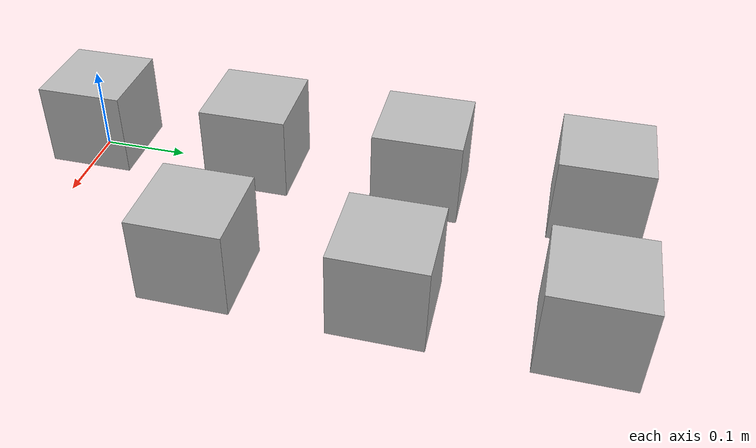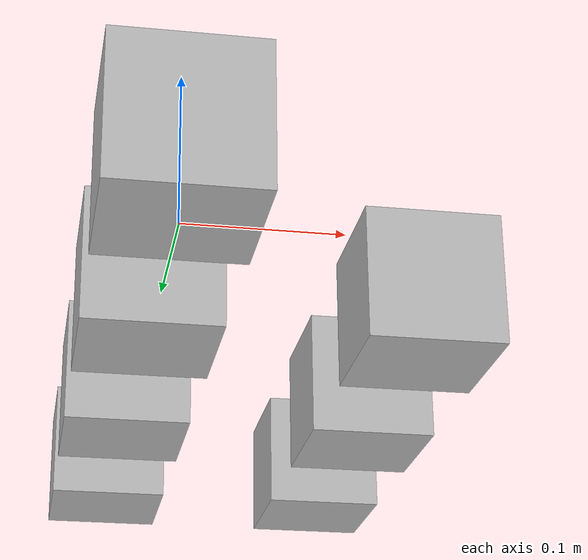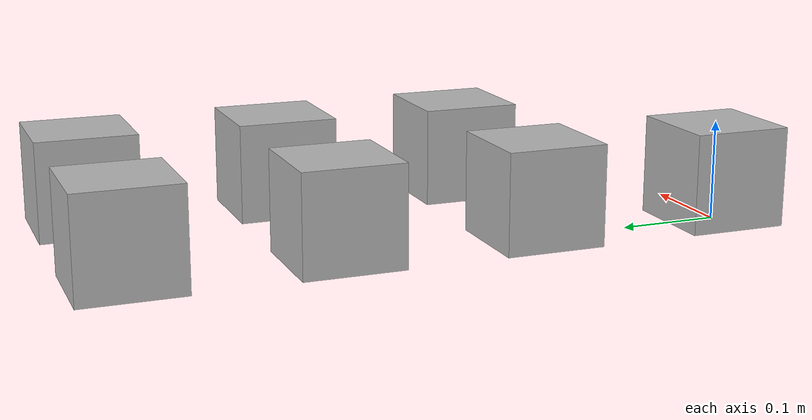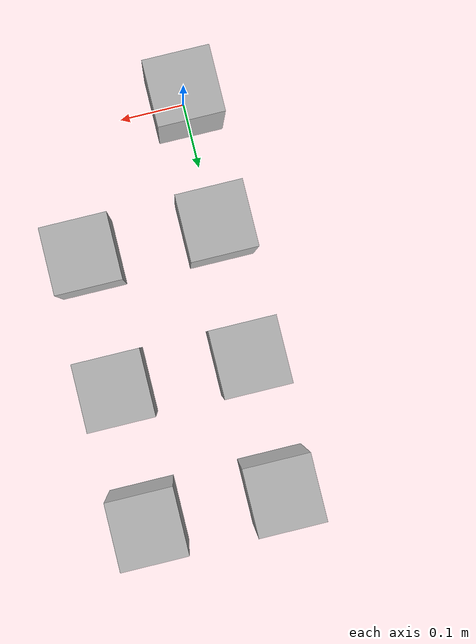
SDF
<?xml version='1.0'?>

<sdf version='1.7'>
  <model name='goods'>
    <static>false</static>

    <link name='no_tag'>
      <pose>0 0 0.05 0 0 0</pose>
      <visual name="visual">
        <geometry>
          <mesh>
            <uri>model://goods/meshes/box.dae</uri>
            <scale>1 1 1</scale>
          </mesh>
        </geometry>
      </visual>
      <collision name="collision">
        <geometry>
          <box>
            <size>0.1 0.1 0.1</size>
          </box>
        </geometry>
      </collision>
      <inertial>
        <mass>0.05</mass>
        <inertia>
          <ixx>0.0001</ixx>
          <iyy>0.0001</iyy>
          <izz>0.0001</izz>
        </inertia>
      </inertial>
    </link>

    <link name='tag36h11-00'>
      <pose relative_to='no_tag'>0 0.6 0 0 0 0</pose>
      <visual name="visual">
        <geometry>
          <mesh>
            <uri>model://goods/meshes/box00.dae</uri>
            <scale>1 1 1</scale>
          </mesh>
        </geometry>
      </visual>
      <collision name="collision">
        <geometry>
          <box>
            <size>0.1 0.1 0.1</size>
          </box>
        </geometry>
      </collision>
      <inertial>
        <mass>0.05</mass>
        <inertia>
          <ixx>0.0001</ixx>
          <iyy>0.0001</iyy>
          <izz>0.0001</izz>
        </inertia>
      </inertial>
    </link>

    <link name='tag36h11-01'>
      <pose relative_to='no_tag'>0.2 0.6 0 0 0 0</pose>
      <visual name="visual">
        <geometry>
          <mesh>
            <uri>model://goods/meshes/box01.dae</uri>
            <scale>1 1 1</scale>
          </mesh>
        </geometry>
      </visual>
      <collision name="collision">
        <geometry>
          <box>
            <size>0.1 0.1 0.1</size>
          </box>
        </geometry>
      </collision>
      <inertial>
        <mass>0.05</mass>
        <inertia>
          <ixx>0.0001</ixx>
          <iyy>0.0001</iyy>
          <izz>0.0001</izz>
        </inertia>
      </inertial>
    </link>

    <link name='tag36h11-02'>
      <pose relative_to='no_tag'>0 0.4 0 0 0 0</pose>
      <visual name="visual">
        <geometry>
          <mesh>
            <uri>model://goods/meshes/box02.dae</uri>
            <scale>1 1 1</scale>
          </mesh>
        </geometry>
      </visual>
      <collision name="collision">
        <geometry>
          <box>
            <size>0.1 0.1 0.1</size>
          </box>
        </geometry>
      </collision>
      <inertial>
        <mass>0.05</mass>
        <inertia>
          <ixx>0.0001</ixx>
          <iyy>0.0001</iyy>
          <izz>0.0001</izz>
        </inertia>
      </inertial>
    </link>

    <link name='tag36h11-03'>
      <pose relative_to='no_tag'>0.2 0.4 0 0 0 0</pose>
      <visual name="visual">
        <geometry>
          <mesh>
            <uri>model://goods/meshes/box03.dae</uri>
            <scale>1 1 1</scale>
          </mesh>
        </geometry>
      </visual>
      <collision name="collision">
        <geometry>
          <box>
            <size>0.1 0.1 0.1</size>
          </box>
        </geometry>
      </collision>
      <inertial>
        <mass>0.05</mass>
        <inertia>
          <ixx>0.0001</ixx>
          <iyy>0.0001</iyy>
          <izz>0.0001</izz>
        </inertia>
      </inertial>
    </link>

    <link name='tag36h11-04'>
      <pose relative_to='no_tag'>0 0.2 0 0 0 0</pose>
      <visual name="visual">
        <geometry>
          <mesh>
            <uri>model://goods/meshes/box04.dae</uri>
            <scale>1 1 1</scale>
          </mesh>
        </geometry>
      </visual>
      <collision name="collision">
        <geometry>
          <box>
            <size>0.1 0.1 0.1</size>
          </box>
        </geometry>
      </collision>
      <inertial>
        <mass>0.05</mass>
        <inertia>
          <ixx>0.0001</ixx>
          <iyy>0.0001</iyy>
          <izz>0.0001</izz>
        </inertia>
      </inertial>
    </link>

    <link name='tag36h11-05'>
      <pose relative_to='no_tag'>0.2 0.2 0 0 0 0</pose>
      <visual name="visual">
        <geometry>
          <mesh>
            <uri>model://goods/meshes/box05.dae</uri>
            <scale>1 1 1</scale>
          </mesh>
        </geometry>
      </visual>
      <collision name="collision">
        <geometry>
          <box>
            <size>0.1 0.1 0.1</size>
          </box>
        </geometry>
      </collision>
      <inertial>
        <mass>0.05</mass>
        <inertia>
          <ixx>0.0001</ixx>
          <iyy>0.0001</iyy>
          <izz>0.0001</izz>
        </inertia>
      </inertial>
    </link>

  </model>
</sdf>
